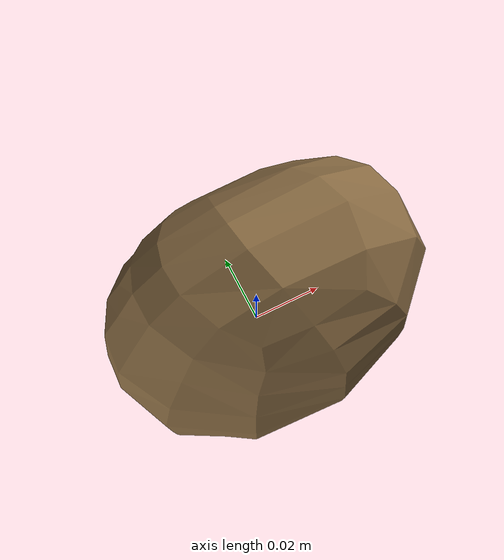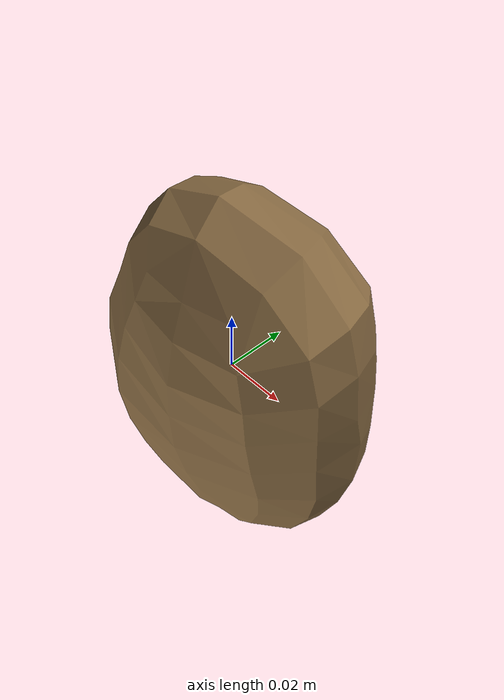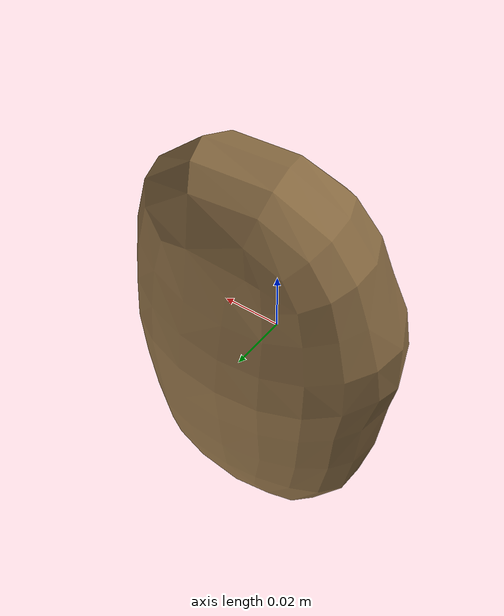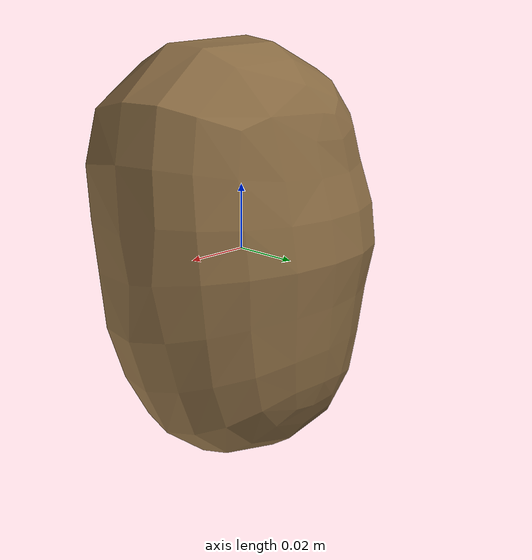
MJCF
<mujoco model="Potato_12">
  <compiler autolimits="true" boundmass="0.01" angle="radian"/>
  <default>
    <default class="/">
      <default class="__VISUAL_MJT__">
        <geom contype="0" conaffinity="0" group="0"/>
      </default>
      <default class="__STRUCTURAL_MJT__">
        <geom contype="8" conaffinity="15" group="4" friction="0.90000000000000002 0.90000000000000002 0.001" solref="0.025000000000000001 1" solimp="0.998 0.998 0.001"/>
      </default>
      <default class="__DYNAMIC_MJT__">
        <geom contype="1" conaffinity="15" group="4" friction="0.90000000000000002 0.90000000000000002 0.001" solref="0.025000000000000001 1" solimp="0.998 0.998 0.001"/>
      </default>
    </default>
  </default>
  <asset>
    <texture name="Potato2_Mat2" type="2d" file="Potato2_AlbedoTransparency.png"/>
    <material name="material_Potato2_Mat2" class="/" texture="Potato2_Mat2" specular="0.5" shininess="0.5" rgba="0.72794119999999995 0.59305790000000003 0.3907331 1"/>
    <mesh name="Potato_12_potato_b2" class="/" file="Potato_12_potato_b2/Potato_12_potato_b2.obj" scale="1 1 1"/>
  </asset>
  <worldbody>
    <body name="Potato_12">
      <joint name="Potato_12_free" class="/" type="free" pos="0 0 0" axis="0 0 1" stiffness="0" range="0 0" armature="0" damping="0.10000000000000001" frictionloss="0"/>
      <body name="Potato_12_potato_b2" pos="0.00172 0.00038000000000000002 -0.00024000000000000001" quat="1 0 0 0">
        <geom name="Potato_12_potato_b2" class="__VISUAL_MJT__" type="mesh" material="material_Potato2_Mat2" shellinertia="true" mesh="Potato_12_potato_b2"/>
        <geom name="Potato_12_PrimitiveCollider_0" class="__DYNAMIC_MJT__" type="capsule" size="0.033542342483997345 0.031087212264537811" rgba="0 1 0 1" pos="0.014118517749011517 -0.00038397614844143391 0.00023627394693903625" quat="1.4751396609986736e-06 0.99999999999891198 0 0"/>
        <geom name="Potato_12_PrimitiveCollider_1" class="__DYNAMIC_MJT__" type="capsule" size="0.033542342483997345 0.031087212264537811" rgba="0 1 0 1" pos="-0.010681482031941414 -0.00038397614844143391 0.00023627394693903625" quat="1.4751396609986736e-06 0.99999999999891198 0 0"/>
        <geom name="Potato_12_PrimitiveCollider_2" class="__DYNAMIC_MJT__" type="capsule" size="0.034493021667003632 0.030136533081531525" rgba="0 1 0 1" pos="0.00081851775757968426 -0.00038397614844143391 0.00023627394693903625" quat="1.4751396609986736e-06 0.99999999999891198 0 0"/>
      </body>
    </body>
  </worldbody>
</mujoco>
